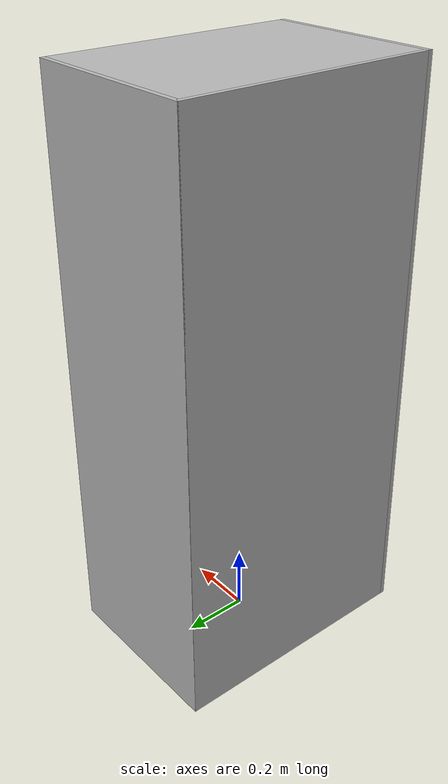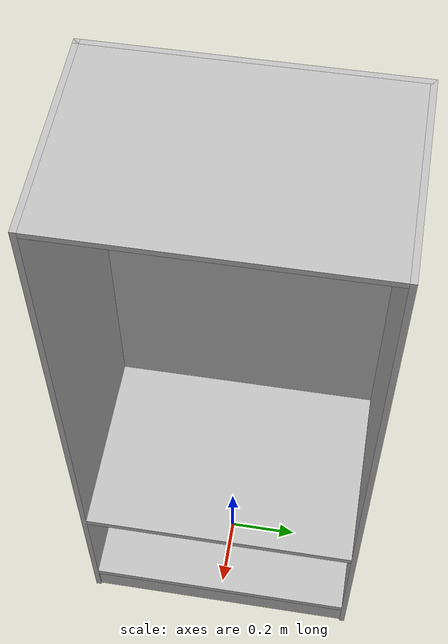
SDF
<?xml version="1.0" ?>
<sdf version="1.6">
  <model name="rwc2022/wardrobe">
    <static>true</static>
    <link name="1_link">
      <collision name="1_col">
        <geometry>
          <box>
            <size>0.55 0.015 1.76</size>
          </box>
        </geometry>
      </collision>
      <visual name="1_vis">
        <geometry>
          <box>
            <size>0.55 0.015 1.76</size>
          </box>
        </geometry>
      </visual>
      <pose>0.0 -0.39 0.88 0 0 0</pose>
    </link>
    <link name="2_link">
      <collision name="2_col">
        <geometry>
          <box>
            <size>0.55 0.015 1.76</size>
          </box>
        </geometry>
      </collision>
      <visual name="2_vis">
        <geometry>
          <box>
            <size>0.55 0.015 1.76</size>
          </box>
        </geometry>
      </visual>
      <pose>0.0 0.39 0.88 0 0 0</pose>
    </link>
    <link name="3_link">
      <collision name="3_col">
        <geometry>
          <box>
            <size>0.015 0.795 1.76</size>
          </box>
        </geometry>
      </collision>
      <visual name="3_vis">
        <geometry>
          <box>
            <size>0.015 0.795 1.76</size>
          </box>
        </geometry>
      </visual>
      <pose>-0.2675 0.0 0.88 0 0 0</pose>
    </link>
    <link name="4_link">
      <collision name="4_col">
        <geometry>
          <box>
            <size>0.535 0.765 0.015</size>
          </box>
        </geometry>
      </collision>
      <visual name="4_vis">
        <geometry>
          <box>
            <size>0.535 0.765 0.015</size>
          </box>
        </geometry>
      </visual>
      <pose>0.0075 0.0 1.7525 0 0 0</pose>
    </link>
    <link name="5_link">
      <collision name="5_col">
        <geometry>
          <box>
            <size>0.535 0.765 0.02</size>
          </box>
        </geometry>
      </collision>
      <visual name="5_vis">
        <geometry>
          <box>
            <size>0.535 0.765 0.02</size>
          </box>
        </geometry>
      </visual>
      <pose>0.0075 0.0 0.455 0 0 0</pose>
    </link>
    <link name="6_link">
      <collision name="6_col">
        <geometry>
          <box>
            <size>0.535 0.765 0.02</size>
          </box>
        </geometry>
      </collision>
      <visual name="6_vis">
        <geometry>
          <box>
            <size>0.535 0.765 0.02</size>
          </box>
        </geometry>
      </visual>
      <pose>0.0075 0.0 0.095 0 0 0</pose>
    </link>
    <link name="7_link">
      <collision name="7_col">
        <geometry>
          <box>
            <size>0.02 0.77 0.9</size>
          </box>
        </geometry>
      </collision>
      <visual name="7_vis">
        <geometry>
          <box>
            <size>0.02 0.77 0.09</size>
          </box>
        </geometry>
      </visual>
      <pose>0.26 0.0 0.045 0 0 0</pose>
    </link>
    <link name="in_front_of">
      <virtual_volume name="in_front_of_vv">
        <geometry>
          <box>
            <size>0.2 0.2975 0.01</size>
          </box>
        </geometry>
        <pose>0.775 0.0 0.005 0 0 0</pose>
      </virtual_volume>
    </link>
    <link name="shelf1">
      <virtual_volume name="shelf1_vv">
        <geometry>
          <box>
            <size>0.515 0.705 0.25</size>
          </box>
        </geometry>
        <pose>0.0075 0.0 0.25 0 0 0</pose>
      </virtual_volume>
    </link>
    <link name="shelf2">
      <virtual_volume name="shelf2_vv">
        <geometry>
          <box>
            <size>0.515 0.705 0.25</size>
          </box>
        </geometry>
        <pose>0.0075 0.0 0.61 0 0 0</pose>
      </virtual_volume>
    </link>
    <link name="on_top_of">
      <virtual_volume name="on_top_of_vv">
        <geometry>
          <box>
            <size>0.515 0.705 0.25</size>
          </box>
        </geometry>
        <pose>0.0075 0.0 0.61 0 0 0</pose>
      </virtual_volume>
    </link>
  </model>
</sdf>
